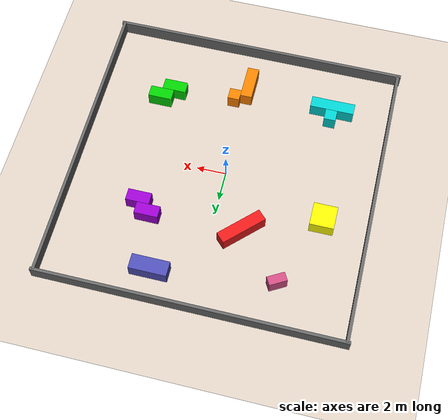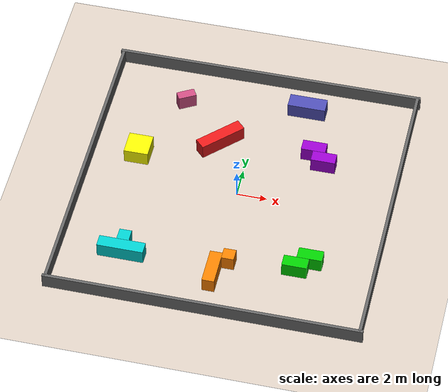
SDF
<?xml version="1.0" ?>
<!-- WORLD: Boxes — Tetris-like arrangement of rectangles at various angles -->
<sdf version="1.6">
  <world name="default">
    <physics name="1ms" type="ignored"><max_step_size>0.001</max_step_size><real_time_factor>1.0</real_time_factor></physics>
    <plugin filename="libignition-gazebo-physics-system.so" name="ignition::gazebo::systems::Physics"/>
    <plugin filename="libignition-gazebo-user-commands-system.so" name="ignition::gazebo::systems::UserCommands"/>
    <plugin filename="libignition-gazebo-scene-broadcaster-system.so" name="ignition::gazebo::systems::SceneBroadcaster"/>
    <light type="directional" name="sun"><cast_shadows>true</cast_shadows><pose>0 0 10 0 0 0</pose><diffuse>0.85 0.85 0.85 1</diffuse><specular>0.2 0.2 0.2 1</specular><attenuation><range>1000</range><constant>0.9</constant><linear>0.01</linear><quadratic>0.001</quadratic></attenuation><direction>-0.5 0.1 -0.9</direction></light>
    <model name="ground"><static>true</static><link name="l"><collision name="c"><geometry><plane><normal>0 0 1</normal><size>100 100</size></plane></geometry></collision><visual name="v"><geometry><plane><normal>0 0 1</normal><size>100 100</size></plane></geometry><material><ambient>0.85 0.8 0.75 1</ambient><diffuse>0.85 0.8 0.75 1</diffuse></material></visual></link></model>
    <model name="wn"><static>true</static><pose>0 10 0.5 0 0 0</pose><link name="l"><collision name="c"><geometry><box><size>20.4 0.2 1</size></box></geometry></collision><visual name="v"><geometry><box><size>20.4 0.2 1</size></box></geometry><material><ambient>0.4 0.4 0.4 1</ambient><diffuse>0.4 0.4 0.4 1</diffuse></material></visual></link></model>
    <model name="ws"><static>true</static><pose>0 -10 0.5 0 0 0</pose><link name="l"><collision name="c"><geometry><box><size>20.4 0.2 1</size></box></geometry></collision><visual name="v"><geometry><box><size>20.4 0.2 1</size></box></geometry><material><ambient>0.4 0.4 0.4 1</ambient><diffuse>0.4 0.4 0.4 1</diffuse></material></visual></link></model>
    <model name="we"><static>true</static><pose>10 0 0.5 0 0 0</pose><link name="l"><collision name="c"><geometry><box><size>0.2 20 1</size></box></geometry></collision><visual name="v"><geometry><box><size>0.2 20 1</size></box></geometry><material><ambient>0.4 0.4 0.4 1</ambient><diffuse>0.4 0.4 0.4 1</diffuse></material></visual></link></model>
    <model name="ww"><static>true</static><pose>-10 0 0.5 0 0 0</pose><link name="l"><collision name="c"><geometry><box><size>0.2 20 1</size></box></geometry></collision><visual name="v"><geometry><box><size>0.2 20 1</size></box></geometry><material><ambient>0.4 0.4 0.4 1</ambient><diffuse>0.4 0.4 0.4 1</diffuse></material></visual></link></model>

    <!-- Tetris T-piece (cyan) at (-6,-6) -->
    <model name="t1"><static>true</static><pose>-6 -6.5 0.5 0 0 0</pose><link name="l"><collision name="c"><geometry><box><size>3.0 0.8 1</size></box></geometry></collision><visual name="v"><geometry><box><size>3.0 0.8 1</size></box></geometry><material><ambient>0.0 0.8 0.8 1</ambient><diffuse>0.0 0.8 0.8 1</diffuse></material></visual></link></model>
    <model name="t2"><static>true</static><pose>-6 -5.7 0.5 0 0 0</pose><link name="l"><collision name="c"><geometry><box><size>0.8 0.8 1</size></box></geometry></collision><visual name="v"><geometry><box><size>0.8 0.8 1</size></box></geometry><material><ambient>0.0 0.8 0.8 1</ambient><diffuse>0.0 0.8 0.8 1</diffuse></material></visual></link></model>
    <!-- Tetris L-piece (orange) at (0,-6) -->
    <model name="l1"><static>true</static><pose>0 -7 0.5 0 0 0</pose><link name="l"><collision name="c"><geometry><box><size>0.8 2.4 1</size></box></geometry></collision><visual name="v"><geometry><box><size>0.8 2.4 1</size></box></geometry><material><ambient>1.0 0.5 0.0 1</ambient><diffuse>1.0 0.5 0.0 1</diffuse></material></visual></link></model>
    <model name="l2"><static>true</static><pose>0.8 -5.8 0.5 0 0 0</pose><link name="l"><collision name="c"><geometry><box><size>0.8 0.8 1</size></box></geometry></collision><visual name="v"><geometry><box><size>0.8 0.8 1</size></box></geometry><material><ambient>1.0 0.5 0.0 1</ambient><diffuse>1.0 0.5 0.0 1</diffuse></material></visual></link></model>
    <!-- Tetris S-piece (green) at (5,-5) -->
    <model name="s1"><static>true</static><pose>5 -5.5 0.5 0 0 0</pose><link name="l"><collision name="c"><geometry><box><size>1.6 0.8 1</size></box></geometry></collision><visual name="v"><geometry><box><size>1.6 0.8 1</size></box></geometry><material><ambient>0.0 0.8 0.0 1</ambient><diffuse>0.0 0.8 0.0 1</diffuse></material></visual></link></model>
    <model name="s2"><static>true</static><pose>5.8 -4.7 0.5 0 0 0</pose><link name="l"><collision name="c"><geometry><box><size>1.6 0.8 1</size></box></geometry></collision><visual name="v"><geometry><box><size>1.6 0.8 1</size></box></geometry><material><ambient>0.0 0.8 0.0 1</ambient><diffuse>0.0 0.8 0.0 1</diffuse></material></visual></link></model>
    <!-- Tetris Square (yellow) at (-7,2) -->
    <model name="sq"><static>true</static><pose>-7 2 0.5 0 0 0</pose><link name="l"><collision name="c"><geometry><box><size>1.6 1.6 1</size></box></geometry></collision><visual name="v"><geometry><box><size>1.6 1.6 1</size></box></geometry><material><ambient>1.0 1.0 0.0 1</ambient><diffuse>1.0 1.0 0.0 1</diffuse></material></visual></link></model>
    <!-- Tetris I-piece (red) at (-2,3) rotated 45° -->
    <model name="ip"><static>true</static><pose>-2 4 0.5 0 0 0.7854</pose><link name="l"><collision name="c"><geometry><box><size>3.2 0.8 1</size></box></geometry></collision><visual name="v"><geometry><box><size>3.2 0.8 1</size></box></geometry><material><ambient>0.9 0.1 0.1 1</ambient><diffuse>0.9 0.1 0.1 1</diffuse></material></visual></link></model>
    <!-- Tetris Z-piece (purple) at (5,3) -->
    <model name="z1"><static>true</static><pose>5 3.5 0.5 0 0 0</pose><link name="l"><collision name="c"><geometry><box><size>1.6 0.8 1</size></box></geometry></collision><visual name="v"><geometry><box><size>1.6 0.8 1</size></box></geometry><material><ambient>0.6 0.0 0.8 1</ambient><diffuse>0.6 0.0 0.8 1</diffuse></material></visual></link></model>
    <model name="z2"><static>true</static><pose>4.2 4.3 0.5 0 0 0</pose><link name="l"><collision name="c"><geometry><box><size>1.6 0.8 1</size></box></geometry></collision><visual name="v"><geometry><box><size>1.6 0.8 1</size></box></geometry><material><ambient>0.6 0.0 0.8 1</ambient><diffuse>0.6 0.0 0.8 1</diffuse></material></visual></link></model>
    <!-- Standalone big rectangle at (3,8) -->
    <model name="big"><static>true</static><pose>3 8 0.5 0 0 0</pose><link name="l"><collision name="c"><geometry><box><size>2.5 1.0 1</size></box></geometry></collision><visual name="v"><geometry><box><size>2.5 1.0 1</size></box></geometry><material><ambient>0.3 0.3 0.7 1</ambient><diffuse>0.3 0.3 0.7 1</diffuse></material></visual></link></model>
    <!-- Small rotated box at (-5,7) -->
    <model name="rot"><static>true</static><pose>-5 7 0.5 0 0 0.5236</pose><link name="l"><collision name="c"><geometry><box><size>1.2 0.6 1</size></box></geometry></collision><visual name="v"><geometry><box><size>1.2 0.6 1</size></box></geometry><material><ambient>0.8 0.3 0.5 1</ambient><diffuse>0.8 0.3 0.5 1</diffuse></material></visual></link></model>
  </world>
</sdf>
